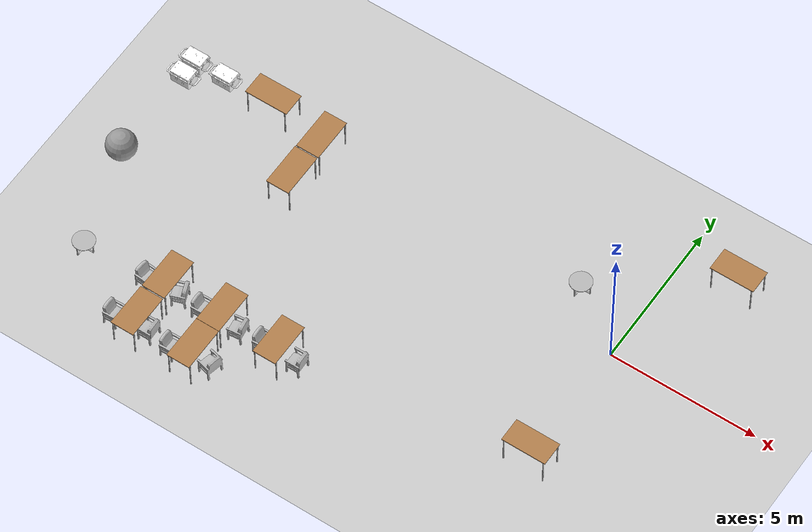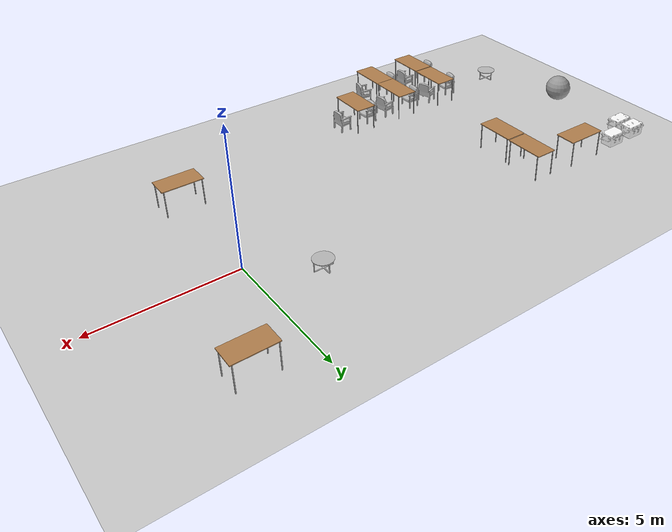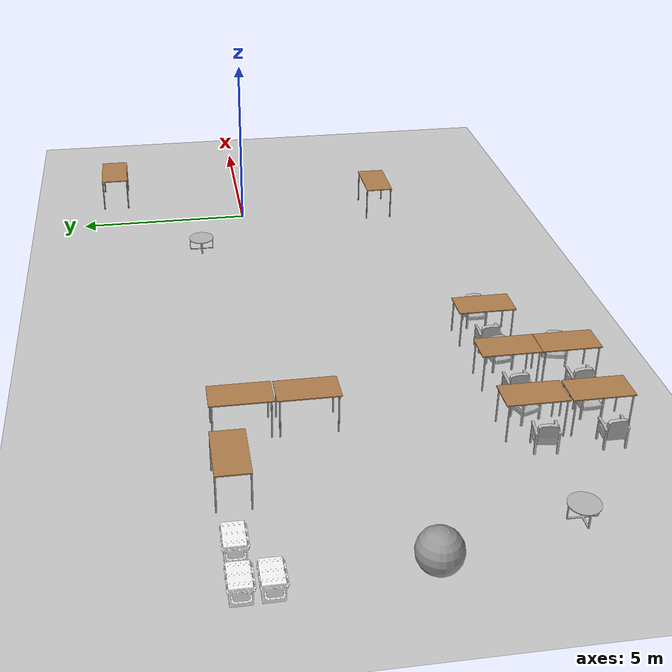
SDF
<sdf version="1.7">
 <world name="default">
  <light name="sun" type="directional">
   <pose>0 0 10 0 -0 0</pose>
   <diffuse>0.8 0.8 0.8 1</diffuse>
   <specular>0.2 0.2 0.2 1</specular>
   <attenuation>
    <range>1000</range>
    <constant>0.9</constant>
    <linear>0.01</linear>
    <quadratic>0.001</quadratic>
   </attenuation>
   <direction>-0.5 0.1 -0.9</direction>
   <spot><inner_angle>0</inner_angle><outer_angle>0</outer_angle><falloff>0</falloff></spot>
  </light>
  <model name="ground_plane">
   <static>1</static>
   <link name="link">
    <collision name="collision">
     <geometry><plane><normal>0 0 1</normal><size>100 100</size></plane></geometry>
     <surface>
      <contact><collide_bitmask>65535</collide_bitmask></contact>
      <friction><ode><mu>100</mu><mu2>50</mu2></ode></friction>
     </surface>
    </collision>
    <visual name="visual">
     <cast_shadows>0</cast_shadows>
     <geometry><plane><normal>0 0 1</normal><size>100 100</size></plane></geometry>
     <material>
      <script><uri>file://media/materials/scripts/gazebo.material</uri><name>Gazebo/Grey</name></script>
     </material>
    </visual>
   </link>
  </model>
  <gravity>0 0 -9.8</gravity>
  <magnetic_field>6e-06 2.3e-05 -4.2e-05</magnetic_field>
  <atmosphere type="adiabatic"/>
  <physics type="ode">
   <max_step_size>0.001</max_step_size>
   <real_time_factor>1</real_time_factor>
   <real_time_update_rate>1000</real_time_update_rate>
  </physics>
  <scene><ambient>0.4 0.4 0.4 1</ambient><background>0.7 0.7 0.7 1</background><shadows>1</shadows></scene>
  <audio><device>default</device></audio>
  <spherical_coordinates>
   <surface_model>EARTH_WGS84</surface_model>
   <latitude_deg>0</latitude_deg>
   <longitude_deg>0</longitude_deg>
   <elevation>0</elevation>
   <heading_deg>0</heading_deg>
  </spherical_coordinates>
  <model name="table">
   <static>1</static>
   <link name="link">
    <collision name="surface">
     <pose>0 0 1 0 -0 0</pose>
     <geometry><box><size>1.5 0.8 0.03</size></box></geometry>
     <surface><friction><ode><mu>0.6</mu><mu2>0.6</mu2></ode></friction></surface>
    </collision>
    <visual name="visual1">
     <pose>0 0 1 0 -0 0</pose>
     <geometry><box><size>1.5 0.8 0.03</size></box></geometry>
     <material>
      <script><uri>file://media/materials/scripts/gazebo.material</uri><name>Gazebo/Wood</name></script>
     </material>
    </visual>
    <collision name="front_left_leg">
     <pose>0.68 0.38 0.5 0 -0 0</pose>
     <geometry><cylinder><radius>0.02</radius><length>1</length></cylinder></geometry>
    </collision>
    <visual name="front_left_leg">
     <pose>0.68 0.38 0.5 0 -0 0</pose>
     <geometry><cylinder><radius>0.02</radius><length>1</length></cylinder></geometry>
     <material>
      <script><uri>file://media/materials/scripts/gazebo.material</uri><name>Gazebo/Grey</name></script>
     </material>
    </visual>
    <collision name="front_right_leg">
     <pose>0.68 -0.38 0.5 0 -0 0</pose>
     <geometry><cylinder><radius>0.02</radius><length>1</length></cylinder></geometry>
    </collision>
    <visual name="front_right_leg">
     <pose>0.68 -0.38 0.5 0 -0 0</pose>
     <geometry><cylinder><radius>0.02</radius><length>1</length></cylinder></geometry>
     <material>
      <script><uri>file://media/materials/scripts/gazebo.material</uri><name>Gazebo/Grey</name></script>
     </material>
    </visual>
    <collision name="back_right_leg">
     <pose>-0.68 -0.38 0.5 0 -0 0</pose>
     <geometry><cylinder><radius>0.02</radius><length>1</length></cylinder></geometry>
    </collision>
    <visual name="back_right_leg">
     <pose>-0.68 -0.38 0.5 0 -0 0</pose>
     <geometry><cylinder><radius>0.02</radius><length>1</length></cylinder></geometry>
     <material>
      <script><uri>file://media/materials/scripts/gazebo.material</uri><name>Gazebo/Grey</name></script>
     </material>
    </visual>
    <collision name="back_left_leg">
     <pose>-0.68 0.38 0.5 0 -0 0</pose>
     <geometry><cylinder><radius>0.02</radius><length>1</length></cylinder></geometry>
    </collision>
    <visual name="back_left_leg">
     <pose>-0.68 0.38 0.5 0 -0 0</pose>
     <geometry><cylinder><radius>0.02</radius><length>1</length></cylinder></geometry>
     <material>
      <script><uri>file://media/materials/scripts/gazebo.material</uri><name>Gazebo/Grey</name></script>
     </material>
    </visual>
   </link>
   <pose>1.84498 4.01691 0 0 -0 0</pose>
  </model>
  <model name="table_0">
   <static>1</static>
   <link name="link">
    <collision name="surface">
     <pose>0 0 1 0 -0 0</pose>
     <geometry><box><size>1.5 0.8 0.03</size></box></geometry>
     <surface><friction><ode><mu>0.6</mu><mu2>0.6</mu2></ode></friction></surface>
    </collision>
    <visual name="visual1">
     <pose>0 0 1 0 -0 0</pose>
     <geometry><box><size>1.5 0.8 0.03</size></box></geometry>
     <material>
      <script><uri>file://media/materials/scripts/gazebo.material</uri><name>Gazebo/Wood</name></script>
     </material>
    </visual>
    <collision name="front_left_leg">
     <pose>0.68 0.38 0.5 0 -0 0</pose>
     <geometry><cylinder><radius>0.02</radius><length>1</length></cylinder></geometry>
    </collision>
    <visual name="front_left_leg">
     <pose>0.68 0.38 0.5 0 -0 0</pose>
     <geometry><cylinder><radius>0.02</radius><length>1</length></cylinder></geometry>
     <material>
      <script><uri>file://media/materials/scripts/gazebo.material</uri><name>Gazebo/Grey</name></script>
     </material>
    </visual>
    <collision name="front_right_leg">
     <pose>0.68 -0.38 0.5 0 -0 0</pose>
     <geometry><cylinder><radius>0.02</radius><length>1</length></cylinder></geometry>
    </collision>
    <visual name="front_right_leg">
     <pose>0.68 -0.38 0.5 0 -0 0</pose>
     <geometry><cylinder><radius>0.02</radius><length>1</length></cylinder></geometry>
     <material>
      <script><uri>file://media/materials/scripts/gazebo.material</uri><name>Gazebo/Grey</name></script>
     </material>
    </visual>
    <collision name="back_right_leg">
     <pose>-0.68 -0.38 0.5 0 -0 0</pose>
     <geometry><cylinder><radius>0.02</radius><length>1</length></cylinder></geometry>
    </collision>
    <visual name="back_right_leg">
     <pose>-0.68 -0.38 0.5 0 -0 0</pose>
     <geometry><cylinder><radius>0.02</radius><length>1</length></cylinder></geometry>
     <material>
      <script><uri>file://media/materials/scripts/gazebo.material</uri><name>Gazebo/Grey</name></script>
     </material>
    </visual>
    <collision name="back_left_leg">
     <pose>-0.68 0.38 0.5 0 -0 0</pose>
     <geometry><cylinder><radius>0.02</radius><length>1</length></cylinder></geometry>
    </collision>
    <visual name="back_left_leg">
     <pose>-0.68 0.38 0.5 0 -0 0</pose>
     <geometry><cylinder><radius>0.02</radius><length>1</length></cylinder></geometry>
     <material>
      <script><uri>file://media/materials/scripts/gazebo.material</uri><name>Gazebo/Grey</name></script>
     </material>
    </visual>
   </link>
   <pose>0 -4.29647 0 0 -0 0</pose>
  </model>
  <model name="CoffeeTable">
   <link name="body">
    <visual name="visual">
     <geometry>
      <mesh><uri>model://coffeetable/meshes/CoffeeTable.obj</uri><scale>0.00817 0.00817 0.00817</scale></mesh>
     </geometry>
    </visual>
    <collision name="collision">
     <geometry>
      <mesh><uri>model://coffeetable/meshes/CoffeeTable.obj</uri><scale>0.00817 0.00817 0.00817</scale></mesh>
     </geometry>
    </collision>
    <inertial>
     <inertia><ixx>1</ixx><ixy>0</ixy><ixz>0</ixz><iyy>1</iyy><iyz>0</iyz><izz>1</izz></inertia>
     <mass>1</mass>
    </inertial>
   </link>
   <pose>-2 1.45574 -0.000121 0 3e-06 0</pose>
  </model>
  <model name="CoffeeTable_0">
   <link name="body">
    <visual name="visual">
     <geometry>
      <mesh><uri>model://coffeetable/meshes/CoffeeTable.obj</uri><scale>0.00817 0.00817 0.00817</scale></mesh>
     </geometry>
    </visual>
    <collision name="collision">
     <geometry>
      <mesh><uri>model://coffeetable/meshes/CoffeeTable.obj</uri><scale>0.00817 0.00817 0.00817</scale></mesh>
     </geometry>
    </collision>
    <inertial>
     <inertia><ixx>1</ixx><ixy>0</ixy><ixz>0</ixz><iyy>1</iyy><iyz>0</iyz><izz>1</izz></inertia>
     <mass>1</mass>
    </inertial>
   </link>
   <pose>-15 -5.56573 -0.00012 3e-06 -2e-06 0</pose>
  </model>
  <model name="table_1_clone_0">
   <static>1</static>
   <link name="link">
    <collision name="surface">
     <pose>0 0 1 0 -0 0</pose>
     <geometry><box><size>1.5 0.8 0.03</size></box></geometry>
     <surface><friction><ode><mu>0.6</mu><mu2>0.6</mu2></ode></friction></surface>
    </collision>
    <visual name="visual1">
     <pose>0 0 1 0 -0 0</pose>
     <geometry><box><size>1.5 0.8 0.03</size></box></geometry>
     <material>
      <script><uri>file://media/materials/scripts/gazebo.material</uri><name>Gazebo/Wood</name></script>
     </material>
    </visual>
    <collision name="front_left_leg">
     <pose>0.68 0.38 0.5 0 -0 0</pose>
     <geometry><cylinder><radius>0.02</radius><length>1</length></cylinder></geometry>
    </collision>
    <visual name="front_left_leg">
     <pose>0.68 0.38 0.5 0 -0 0</pose>
     <geometry><cylinder><radius>0.02</radius><length>1</length></cylinder></geometry>
     <material>
      <script><uri>file://media/materials/scripts/gazebo.material</uri><name>Gazebo/Grey</name></script>
     </material>
    </visual>
    <collision name="front_right_leg">
     <pose>0.68 -0.38 0.5 0 -0 0</pose>
     <geometry><cylinder><radius>0.02</radius><length>1</length></cylinder></geometry>
    </collision>
    <visual name="front_right_leg">
     <pose>0.68 -0.38 0.5 0 -0 0</pose>
     <geometry><cylinder><radius>0.02</radius><length>1</length></cylinder></geometry>
     <material>
      <script><uri>file://media/materials/scripts/gazebo.material</uri><name>Gazebo/Grey</name></script>
     </material>
    </visual>
    <collision name="back_right_leg">
     <pose>-0.68 -0.38 0.5 0 -0 0</pose>
     <geometry><cylinder><radius>0.02</radius><length>1</length></cylinder></geometry>
    </collision>
    <visual name="back_right_leg">
     <pose>-0.68 -0.38 0.5 0 -0 0</pose>
     <geometry><cylinder><radius>0.02</radius><length>1</length></cylinder></geometry>
     <material>
      <script><uri>file://media/materials/scripts/gazebo.material</uri><name>Gazebo/Grey</name></script>
     </material>
    </visual>
    <collision name="back_left_leg">
     <pose>-0.68 0.38 0.5 0 -0 0</pose>
     <geometry><cylinder><radius>0.02</radius><length>1</length></cylinder></geometry>
    </collision>
    <visual name="back_left_leg">
     <pose>-0.68 0.38 0.5 0 -0 0</pose>
     <geometry><cylinder><radius>0.02</radius><length>1</length></cylinder></geometry>
     <material>
      <script><uri>file://media/materials/scripts/gazebo.material</uri><name>Gazebo/Grey</name></script>
     </material>
    </visual>
   </link>
   <pose>-8 -5.49442 0 0 0 -1.5708</pose>
  </model>
  <model name="table_1_clone_1">
   <static>1</static>
   <link name="link">
    <collision name="surface">
     <pose>0 0 1 0 -0 0</pose>
     <geometry><box><size>1.5 0.8 0.03</size></box></geometry>
     <surface><friction><ode><mu>0.6</mu><mu2>0.6</mu2></ode></friction></surface>
    </collision>
    <visual name="visual1">
     <pose>0 0 1 0 -0 0</pose>
     <geometry><box><size>1.5 0.8 0.03</size></box></geometry>
     <material>
      <script><uri>file://media/materials/scripts/gazebo.material</uri><name>Gazebo/Wood</name></script>
     </material>
    </visual>
    <collision name="front_left_leg">
     <pose>0.68 0.38 0.5 0 -0 0</pose>
     <geometry><cylinder><radius>0.02</radius><length>1</length></cylinder></geometry>
    </collision>
    <visual name="front_left_leg">
     <pose>0.68 0.38 0.5 0 -0 0</pose>
     <geometry><cylinder><radius>0.02</radius><length>1</length></cylinder></geometry>
     <material>
      <script><uri>file://media/materials/scripts/gazebo.material</uri><name>Gazebo/Grey</name></script>
     </material>
    </visual>
    <collision name="front_right_leg">
     <pose>0.68 -0.38 0.5 0 -0 0</pose>
     <geometry><cylinder><radius>0.02</radius><length>1</length></cylinder></geometry>
    </collision>
    <visual name="front_right_leg">
     <pose>0.68 -0.38 0.5 0 -0 0</pose>
     <geometry><cylinder><radius>0.02</radius><length>1</length></cylinder></geometry>
     <material>
      <script><uri>file://media/materials/scripts/gazebo.material</uri><name>Gazebo/Grey</name></script>
     </material>
    </visual>
    <collision name="back_right_leg">
     <pose>-0.68 -0.38 0.5 0 -0 0</pose>
     <geometry><cylinder><radius>0.02</radius><length>1</length></cylinder></geometry>
    </collision>
    <visual name="back_right_leg">
     <pose>-0.68 -0.38 0.5 0 -0 0</pose>
     <geometry><cylinder><radius>0.02</radius><length>1</length></cylinder></geometry>
     <material>
      <script><uri>file://media/materials/scripts/gazebo.material</uri><name>Gazebo/Grey</name></script>
     </material>
    </visual>
    <collision name="back_left_leg">
     <pose>-0.68 0.38 0.5 0 -0 0</pose>
     <geometry><cylinder><radius>0.02</radius><length>1</length></cylinder></geometry>
    </collision>
    <visual name="back_left_leg">
     <pose>-0.68 0.38 0.5 0 -0 0</pose>
     <geometry><cylinder><radius>0.02</radius><length>1</length></cylinder></geometry>
     <material>
      <script><uri>file://media/materials/scripts/gazebo.material</uri><name>Gazebo/Grey</name></script>
     </material>
    </visual>
   </link>
   <pose>-10 -7 0 0 0 -1.5708</pose>
  </model>
  <model name="table_1_clone_2">
   <static>1</static>
   <link name="link">
    <collision name="surface">
     <pose>0 0 1 0 -0 0</pose>
     <geometry><box><size>1.5 0.8 0.03</size></box></geometry>
     <surface><friction><ode><mu>0.6</mu><mu2>0.6</mu2></ode></friction></surface>
    </collision>
    <visual name="visual1">
     <pose>0 0 1 0 -0 0</pose>
     <geometry><box><size>1.5 0.8 0.03</size></box></geometry>
     <material>
      <script><uri>file://media/materials/scripts/gazebo.material</uri><name>Gazebo/Wood</name></script>
     </material>
    </visual>
    <collision name="front_left_leg">
     <pose>0.68 0.38 0.5 0 -0 0</pose>
     <geometry><cylinder><radius>0.02</radius><length>1</length></cylinder></geometry>
    </collision>
    <visual name="front_left_leg">
     <pose>0.68 0.38 0.5 0 -0 0</pose>
     <geometry><cylinder><radius>0.02</radius><length>1</length></cylinder></geometry>
     <material>
      <script><uri>file://media/materials/scripts/gazebo.material</uri><name>Gazebo/Grey</name></script>
     </material>
    </visual>
    <collision name="front_right_leg">
     <pose>0.68 -0.38 0.5 0 -0 0</pose>
     <geometry><cylinder><radius>0.02</radius><length>1</length></cylinder></geometry>
    </collision>
    <visual name="front_right_leg">
     <pose>0.68 -0.38 0.5 0 -0 0</pose>
     <geometry><cylinder><radius>0.02</radius><length>1</length></cylinder></geometry>
     <material>
      <script><uri>file://media/materials/scripts/gazebo.material</uri><name>Gazebo/Grey</name></script>
     </material>
    </visual>
    <collision name="back_right_leg">
     <pose>-0.68 -0.38 0.5 0 -0 0</pose>
     <geometry><cylinder><radius>0.02</radius><length>1</length></cylinder></geometry>
    </collision>
    <visual name="back_right_leg">
     <pose>-0.68 -0.38 0.5 0 -0 0</pose>
     <geometry><cylinder><radius>0.02</radius><length>1</length></cylinder></geometry>
     <material>
      <script><uri>file://media/materials/scripts/gazebo.material</uri><name>Gazebo/Grey</name></script>
     </material>
    </visual>
    <collision name="back_left_leg">
     <pose>-0.68 0.38 0.5 0 -0 0</pose>
     <geometry><cylinder><radius>0.02</radius><length>1</length></cylinder></geometry>
    </collision>
    <visual name="back_left_leg">
     <pose>-0.68 0.38 0.5 0 -0 0</pose>
     <geometry><cylinder><radius>0.02</radius><length>1</length></cylinder></geometry>
     <material>
      <script><uri>file://media/materials/scripts/gazebo.material</uri><name>Gazebo/Grey</name></script>
     </material>
    </visual>
   </link>
   <pose>-10 -5.49442 0 0 0 -1.5708</pose>
  </model>
  <model name="table_1_clone_3">
   <static>1</static>
   <link name="link">
    <collision name="surface">
     <pose>0 0 1 0 -0 0</pose>
     <geometry><box><size>1.5 0.8 0.03</size></box></geometry>
     <surface><friction><ode><mu>0.6</mu><mu2>0.6</mu2></ode></friction></surface>
    </collision>
    <visual name="visual1">
     <pose>0 0 1 0 -0 0</pose>
     <geometry><box><size>1.5 0.8 0.03</size></box></geometry>
     <material>
      <script><uri>file://media/materials/scripts/gazebo.material</uri><name>Gazebo/Wood</name></script>
     </material>
    </visual>
    <collision name="front_left_leg">
     <pose>0.68 0.38 0.5 0 -0 0</pose>
     <geometry><cylinder><radius>0.02</radius><length>1</length></cylinder></geometry>
    </collision>
    <visual name="front_left_leg">
     <pose>0.68 0.38 0.5 0 -0 0</pose>
     <geometry><cylinder><radius>0.02</radius><length>1</length></cylinder></geometry>
     <material>
      <script><uri>file://media/materials/scripts/gazebo.material</uri><name>Gazebo/Grey</name></script>
     </material>
    </visual>
    <collision name="front_right_leg">
     <pose>0.68 -0.38 0.5 0 -0 0</pose>
     <geometry><cylinder><radius>0.02</radius><length>1</length></cylinder></geometry>
    </collision>
    <visual name="front_right_leg">
     <pose>0.68 -0.38 0.5 0 -0 0</pose>
     <geometry><cylinder><radius>0.02</radius><length>1</length></cylinder></geometry>
     <material>
      <script><uri>file://media/materials/scripts/gazebo.material</uri><name>Gazebo/Grey</name></script>
     </material>
    </visual>
    <collision name="back_right_leg">
     <pose>-0.68 -0.38 0.5 0 -0 0</pose>
     <geometry><cylinder><radius>0.02</radius><length>1</length></cylinder></geometry>
    </collision>
    <visual name="back_right_leg">
     <pose>-0.68 -0.38 0.5 0 -0 0</pose>
     <geometry><cylinder><radius>0.02</radius><length>1</length></cylinder></geometry>
     <material>
      <script><uri>file://media/materials/scripts/gazebo.material</uri><name>Gazebo/Grey</name></script>
     </material>
    </visual>
    <collision name="back_left_leg">
     <pose>-0.68 0.38 0.5 0 -0 0</pose>
     <geometry><cylinder><radius>0.02</radius><length>1</length></cylinder></geometry>
    </collision>
    <visual name="back_left_leg">
     <pose>-0.68 0.38 0.5 0 -0 0</pose>
     <geometry><cylinder><radius>0.02</radius><length>1</length></cylinder></geometry>
     <material>
      <script><uri>file://media/materials/scripts/gazebo.material</uri><name>Gazebo/Grey</name></script>
     </material>
    </visual>
   </link>
   <pose>-12 -7 0 0 0 -1.5708</pose>
  </model>
  <model name="table_1_clone_5_clone">
   <static>1</static>
   <link name="link">
    <collision name="surface">
     <pose>0 0 1 0 -0 0</pose>
     <geometry><box><size>1.5 0.8 0.03</size></box></geometry>
     <surface><friction><ode><mu>0.6</mu><mu2>0.6</mu2></ode></friction></surface>
    </collision>
    <visual name="visual1">
     <pose>0 0 1 0 -0 0</pose>
     <geometry><box><size>1.5 0.8 0.03</size></box></geometry>
     <material>
      <script><uri>file://media/materials/scripts/gazebo.material</uri><name>Gazebo/Wood</name></script>
     </material>
    </visual>
    <collision name="front_left_leg">
     <pose>0.68 0.38 0.5 0 -0 0</pose>
     <geometry><cylinder><radius>0.02</radius><length>1</length></cylinder></geometry>
    </collision>
    <visual name="front_left_leg">
     <pose>0.68 0.38 0.5 0 -0 0</pose>
     <geometry><cylinder><radius>0.02</radius><length>1</length></cylinder></geometry>
     <material>
      <script><uri>file://media/materials/scripts/gazebo.material</uri><name>Gazebo/Grey</name></script>
     </material>
    </visual>
    <collision name="front_right_leg">
     <pose>0.68 -0.38 0.5 0 -0 0</pose>
     <geometry><cylinder><radius>0.02</radius><length>1</length></cylinder></geometry>
    </collision>
    <visual name="front_right_leg">
     <pose>0.68 -0.38 0.5 0 -0 0</pose>
     <geometry><cylinder><radius>0.02</radius><length>1</length></cylinder></geometry>
     <material>
      <script><uri>file://media/materials/scripts/gazebo.material</uri><name>Gazebo/Grey</name></script>
     </material>
    </visual>
    <collision name="back_right_leg">
     <pose>-0.68 -0.38 0.5 0 -0 0</pose>
     <geometry><cylinder><radius>0.02</radius><length>1</length></cylinder></geometry>
    </collision>
    <visual name="back_right_leg">
     <pose>-0.68 -0.38 0.5 0 -0 0</pose>
     <geometry><cylinder><radius>0.02</radius><length>1</length></cylinder></geometry>
     <material>
      <script><uri>file://media/materials/scripts/gazebo.material</uri><name>Gazebo/Grey</name></script>
     </material>
    </visual>
    <collision name="back_left_leg">
     <pose>-0.68 0.38 0.5 0 -0 0</pose>
     <geometry><cylinder><radius>0.02</radius><length>1</length></cylinder></geometry>
    </collision>
    <visual name="back_left_leg">
     <pose>-0.68 0.38 0.5 0 -0 0</pose>
     <geometry><cylinder><radius>0.02</radius><length>1</length></cylinder></geometry>
     <material>
      <script><uri>file://media/materials/scripts/gazebo.material</uri><name>Gazebo/Grey</name></script>
     </material>
    </visual>
   </link>
   <pose>-13.0967 1.55283 0 0 -0 3.14159</pose>
  </model>
  <model name="table_1_clone_4_clone">
   <static>1</static>
   <link name="link">
    <collision name="surface">
     <pose>0 0 1 0 -0 0</pose>
     <geometry><box><size>1.5 0.8 0.03</size></box></geometry>
     <surface><friction><ode><mu>0.6</mu><mu2>0.6</mu2></ode></friction></surface>
    </collision>
    <visual name="visual1">
     <pose>0 0 1 0 -0 0</pose>
     <geometry><box><size>1.5 0.8 0.03</size></box></geometry>
     <material>
      <script><uri>file://media/materials/scripts/gazebo.material</uri><name>Gazebo/Wood</name></script>
     </material>
    </visual>
    <collision name="front_left_leg">
     <pose>0.68 0.38 0.5 0 -0 0</pose>
     <geometry><cylinder><radius>0.02</radius><length>1</length></cylinder></geometry>
    </collision>
    <visual name="front_left_leg">
     <pose>0.68 0.38 0.5 0 -0 0</pose>
     <geometry><cylinder><radius>0.02</radius><length>1</length></cylinder></geometry>
     <material>
      <script><uri>file://media/materials/scripts/gazebo.material</uri><name>Gazebo/Grey</name></script>
     </material>
    </visual>
    <collision name="front_right_leg">
     <pose>0.68 -0.38 0.5 0 -0 0</pose>
     <geometry><cylinder><radius>0.02</radius><length>1</length></cylinder></geometry>
    </collision>
    <visual name="front_right_leg">
     <pose>0.68 -0.38 0.5 0 -0 0</pose>
     <geometry><cylinder><radius>0.02</radius><length>1</length></cylinder></geometry>
     <material>
      <script><uri>file://media/materials/scripts/gazebo.material</uri><name>Gazebo/Grey</name></script>
     </material>
    </visual>
    <collision name="back_right_leg">
     <pose>-0.68 -0.38 0.5 0 -0 0</pose>
     <geometry><cylinder><radius>0.02</radius><length>1</length></cylinder></geometry>
    </collision>
    <visual name="back_right_leg">
     <pose>-0.68 -0.38 0.5 0 -0 0</pose>
     <geometry><cylinder><radius>0.02</radius><length>1</length></cylinder></geometry>
     <material>
      <script><uri>file://media/materials/scripts/gazebo.material</uri><name>Gazebo/Grey</name></script>
     </material>
    </visual>
    <collision name="back_left_leg">
     <pose>-0.68 0.38 0.5 0 -0 0</pose>
     <geometry><cylinder><radius>0.02</radius><length>1</length></cylinder></geometry>
    </collision>
    <visual name="back_left_leg">
     <pose>-0.68 0.38 0.5 0 -0 0</pose>
     <geometry><cylinder><radius>0.02</radius><length>1</length></cylinder></geometry>
     <material>
      <script><uri>file://media/materials/scripts/gazebo.material</uri><name>Gazebo/Grey</name></script>
     </material>
    </visual>
   </link>
   <pose>-11.0599 1.14871 0 0 0 -1.5708</pose>
  </model>
  <model name="table_1_clone_4_clone_clone">
   <static>1</static>
   <link name="link">
    <collision name="surface">
     <pose>0 0 1 0 -0 0</pose>
     <geometry><box><size>1.5 0.8 0.03</size></box></geometry>
     <surface><friction><ode><mu>0.6</mu><mu2>0.6</mu2></ode></friction></surface>
    </collision>
    <visual name="visual1">
     <pose>0 0 1 0 -0 0</pose>
     <geometry><box><size>1.5 0.8 0.03</size></box></geometry>
     <material>
      <script><uri>file://media/materials/scripts/gazebo.material</uri><name>Gazebo/Wood</name></script>
     </material>
    </visual>
    <collision name="front_left_leg">
     <pose>0.68 0.38 0.5 0 -0 0</pose>
     <geometry><cylinder><radius>0.02</radius><length>1</length></cylinder></geometry>
    </collision>
    <visual name="front_left_leg">
     <pose>0.68 0.38 0.5 0 -0 0</pose>
     <geometry><cylinder><radius>0.02</radius><length>1</length></cylinder></geometry>
     <material>
      <script><uri>file://media/materials/scripts/gazebo.material</uri><name>Gazebo/Grey</name></script>
     </material>
    </visual>
    <collision name="front_right_leg">
     <pose>0.68 -0.38 0.5 0 -0 0</pose>
     <geometry><cylinder><radius>0.02</radius><length>1</length></cylinder></geometry>
    </collision>
    <visual name="front_right_leg">
     <pose>0.68 -0.38 0.5 0 -0 0</pose>
     <geometry><cylinder><radius>0.02</radius><length>1</length></cylinder></geometry>
     <material>
      <script><uri>file://media/materials/scripts/gazebo.material</uri><name>Gazebo/Grey</name></script>
     </material>
    </visual>
    <collision name="back_right_leg">
     <pose>-0.68 -0.38 0.5 0 -0 0</pose>
     <geometry><cylinder><radius>0.02</radius><length>1</length></cylinder></geometry>
    </collision>
    <visual name="back_right_leg">
     <pose>-0.68 -0.38 0.5 0 -0 0</pose>
     <geometry><cylinder><radius>0.02</radius><length>1</length></cylinder></geometry>
     <material>
      <script><uri>file://media/materials/scripts/gazebo.material</uri><name>Gazebo/Grey</name></script>
     </material>
    </visual>
    <collision name="back_left_leg">
     <pose>-0.68 0.38 0.5 0 -0 0</pose>
     <geometry><cylinder><radius>0.02</radius><length>1</length></cylinder></geometry>
    </collision>
    <visual name="back_left_leg">
     <pose>-0.68 0.38 0.5 0 -0 0</pose>
     <geometry><cylinder><radius>0.02</radius><length>1</length></cylinder></geometry>
     <material>
      <script><uri>file://media/materials/scripts/gazebo.material</uri><name>Gazebo/Grey</name></script>
     </material>
    </visual>
   </link>
   <pose>-11.0752 -0.396348 0 0 0 -1.5708</pose>
  </model>
  <model name="unit_sphere">
   <pose>-16.0258 -2.23022 0.5 0 -0 0</pose>
   <link name="link">
    <inertial>
     <mass>1</mass>
     <inertia><ixx>0.1</ixx><ixy>0</ixy><ixz>0</ixz><iyy>0.1</iyy><iyz>0</iyz><izz>0.1</izz></inertia>
    </inertial>
    <collision name="collision"><geometry><sphere><radius>0.5</radius></sphere></geometry></collision>
    <visual name="visual">
     <geometry><sphere><radius>0.5</radius></sphere></geometry>
     <material>
      <script><name>Gazebo/Grey</name><uri>file://media/materials/scripts/gazebo.material</uri></script>
     </material>
    </visual>
   </link>
  </model>
  <model name="Chair_0">
   <link name="body">
    <pose>0 0 0 0 -0 1.5708</pose>
    <visual name="visual">
     <geometry>
      <mesh><uri>model://chair/meshes/Chair.obj</uri><scale>0.00817 0.00817 0.00817</scale></mesh>
     </geometry>
    </visual>
    <collision name="collision">
     <geometry>
      <mesh><uri>model://chair/meshes/Chair.obj</uri><scale>0.00817 0.00817 0.00817</scale></mesh>
     </geometry>
    </collision>
    <inertial>
     <inertia><ixx>1</ixx><ixy>0</ixy><ixz>0</ixz><iyy>1</iyy><iyz>0</iyz><izz>1</izz></inertia>
     <mass>1</mass>
    </inertial>
   </link>
   <pose>-8.5117 -5.48522 -1e-05 -1e-06 -2e-06 0</pose>
  </model>
  <model name="Chair_0_clone_0">
   <link name="body">
    <pose>0 0 0 0 -0 1.5708</pose>
    <visual name="visual">
     <geometry>
      <mesh><uri>model://chair/meshes/Chair.obj</uri><scale>0.00817 0.00817 0.00817</scale></mesh>
     </geometry>
    </visual>
    <collision name="collision">
     <geometry>
      <mesh><uri>model://chair/meshes/Chair.obj</uri><scale>0.00817 0.00817 0.00817</scale></mesh>
     </geometry>
    </collision>
    <inertial>
     <inertia><ixx>1</ixx><ixy>0</ixy><ixz>0</ixz><iyy>1</iyy><iyz>0</iyz><izz>1</izz></inertia>
     <mass>1</mass>
    </inertial>
   </link>
   <pose>-10.6773 -5.52268 -1e-06 -2.3e-05 1.2e-05 0</pose>
  </model>
  <model name="Chair_0_clone_1">
   <link name="body">
    <pose>0 0 0 0 -0 1.5708</pose>
    <visual name="visual">
     <geometry>
      <mesh><uri>model://chair/meshes/Chair.obj</uri><scale>0.00817 0.00817 0.00817</scale></mesh>
     </geometry>
    </visual>
    <collision name="collision">
     <geometry>
      <mesh><uri>model://chair/meshes/Chair.obj</uri><scale>0.00817 0.00817 0.00817</scale></mesh>
     </geometry>
    </collision>
    <inertial>
     <inertia><ixx>1</ixx><ixy>0</ixy><ixz>0</ixz><iyy>1</iyy><iyz>0</iyz><izz>1</izz></inertia>
     <mass>1</mass>
    </inertial>
   </link>
   <pose>-10.6815 -7.1114 2e-06 1e-06 1.4e-05 0</pose>
  </model>
  <model name="Chair_0_clone_2">
   <link name="body">
    <pose>0 0 0 0 -0 1.5708</pose>
    <visual name="visual">
     <geometry>
      <mesh><uri>model://chair/meshes/Chair.obj</uri><scale>0.00817 0.00817 0.00817</scale></mesh>
     </geometry>
    </visual>
    <collision name="collision">
     <geometry>
      <mesh><uri>model://chair/meshes/Chair.obj</uri><scale>0.00817 0.00817 0.00817</scale></mesh>
     </geometry>
    </collision>
    <inertial>
     <inertia><ixx>1</ixx><ixy>0</ixy><ixz>0</ixz><iyy>1</iyy><iyz>0</iyz><izz>1</izz></inertia>
     <mass>1</mass>
    </inertial>
   </link>
   <pose>-12.6668 -5.55131 -3e-06 -2e-05 8e-06 -0.11722</pose>
  </model>
  <model name="Chair_0_clone_3">
   <link name="body">
    <pose>0 0 0 0 -0 1.5708</pose>
    <visual name="visual">
     <geometry>
      <mesh><uri>model://chair/meshes/Chair.obj</uri><scale>0.00817 0.00817 0.00817</scale></mesh>
     </geometry>
    </visual>
    <collision name="collision">
     <geometry>
      <mesh><uri>model://chair/meshes/Chair.obj</uri><scale>0.00817 0.00817 0.00817</scale></mesh>
     </geometry>
    </collision>
    <inertial>
     <inertia><ixx>1</ixx><ixy>0</ixy><ixz>0</ixz><iyy>1</iyy><iyz>0</iyz><izz>1</izz></inertia>
     <mass>1</mass>
    </inertial>
   </link>
   <pose>-12.7155 -7.11345 -0 1e-05 -7e-06 0</pose>
  </model>
  <model name="Chair_0_clone_4">
   <link name="body">
    <pose>0 0 0 0 -0 1.5708</pose>
    <visual name="visual">
     <geometry>
      <mesh><uri>model://chair/meshes/Chair.obj</uri><scale>0.00817 0.00817 0.00817</scale></mesh>
     </geometry>
    </visual>
    <collision name="collision">
     <geometry>
      <mesh><uri>model://chair/meshes/Chair.obj</uri><scale>0.00817 0.00817 0.00817</scale></mesh>
     </geometry>
    </collision>
    <inertial>
     <inertia><ixx>1</ixx><ixy>0</ixy><ixz>0</ixz><iyy>1</iyy><iyz>0</iyz><izz>1</izz></inertia>
     <mass>1</mass>
    </inertial>
   </link>
   <pose>-7.3992 -5.49972 -7e-06 -4e-06 -8e-06 -3.11759</pose>
  </model>
  <model name="Chair_0_clone_4_clone_0">
   <link name="body">
    <pose>0 0 0 0 -0 1.5708</pose>
    <visual name="visual">
     <geometry>
      <mesh><uri>model://chair/meshes/Chair.obj</uri><scale>0.00817 0.00817 0.00817</scale></mesh>
     </geometry>
    </visual>
    <collision name="collision">
     <geometry>
      <mesh><uri>model://chair/meshes/Chair.obj</uri><scale>0.00817 0.00817 0.00817</scale></mesh>
     </geometry>
    </collision>
    <inertial>
     <inertia><ixx>1</ixx><ixy>0</ixy><ixz>0</ixz><iyy>1</iyy><iyz>0</iyz><izz>1</izz></inertia>
     <mass>1</mass>
    </inertial>
   </link>
   <pose>-9.4618 -6.9689 -1e-06 2e-06 1e-06 2.92284</pose>
  </model>
  <model name="Chair_0_clone_4_clone_1">
   <link name="body">
    <pose>0 0 0 0 -0 1.5708</pose>
    <visual name="visual">
     <geometry>
      <mesh><uri>model://chair/meshes/Chair.obj</uri><scale>0.00817 0.00817 0.00817</scale></mesh>
     </geometry>
    </visual>
    <collision name="collision">
     <geometry>
      <mesh><uri>model://chair/meshes/Chair.obj</uri><scale>0.00817 0.00817 0.00817</scale></mesh>
     </geometry>
    </collision>
    <inertial>
     <inertia><ixx>1</ixx><ixy>0</ixy><ixz>0</ixz><iyy>1</iyy><iyz>0</iyz><izz>1</izz></inertia>
     <mass>1</mass>
    </inertial>
   </link>
   <pose>-9.48188 -5.53846 -5e-06 9e-06 1e-05 -2.99674</pose>
  </model>
  <model name="Chair_0_clone_4_clone_2">
   <link name="body">
    <pose>0 0 0 0 -0 1.5708</pose>
    <visual name="visual">
     <geometry>
      <mesh><uri>model://chair/meshes/Chair.obj</uri><scale>0.00817 0.00817 0.00817</scale></mesh>
     </geometry>
    </visual>
    <collision name="collision">
     <geometry>
      <mesh><uri>model://chair/meshes/Chair.obj</uri><scale>0.00817 0.00817 0.00817</scale></mesh>
     </geometry>
    </collision>
    <inertial>
     <inertia><ixx>1</ixx><ixy>0</ixy><ixz>0</ixz><iyy>1</iyy><iyz>0</iyz><izz>1</izz></inertia>
     <mass>1</mass>
    </inertial>
   </link>
   <pose>-11.6037 -5.4984 1e-06 -0 -3e-06 -2.7691</pose>
  </model>
  <model name="Chair_0_clone_4_clone_3">
   <link name="body">
    <pose>0 0 0 0 -0 1.5708</pose>
    <visual name="visual">
     <geometry>
      <mesh><uri>model://chair/meshes/Chair.obj</uri><scale>0.00817 0.00817 0.00817</scale></mesh>
     </geometry>
    </visual>
    <collision name="collision">
     <geometry>
      <mesh><uri>model://chair/meshes/Chair.obj</uri><scale>0.00817 0.00817 0.00817</scale></mesh>
     </geometry>
    </collision>
    <inertial>
     <inertia><ixx>1</ixx><ixy>0</ixy><ixz>0</ixz><iyy>1</iyy><iyz>0</iyz><izz>1</izz></inertia>
     <mass>1</mass>
    </inertial>
   </link>
   <pose>-11.6476 -7.00833 3e-06 0 -1.2e-05 -3.10372</pose>
  </model>
  <model name="large_crate_0">
   <static>0</static>
   <link name="link">
    <inertial>
     <pose>0 0 0.25 0 -0 0</pose>
     <mass>8</mass>
     <inertia><ixx>0.36486</ixx><ixy>0</ixy><ixz>0</ixz><iyy>0.93845</iyy><iyz>0</iyz><izz>0.983511</izz></inertia>
    </inertial>
    <visual name="visual">
     <geometry><mesh><uri>model://large crate/meshes/LargeCrate.dae</uri></mesh></geometry>
     <material>
      <diffuse>1 1 1 1</diffuse>
      <specular>1 1 1 1</specular>
      <pbr>
       <metal>
        <albedo_map>materials/textures/Crate_Albedo.jpg</albedo_map>
        <normal_map>materials/textures/Crate_Normal.jpg</normal_map>
        <roughness_map>materials/textures/Crate_Roughness.jpg</roughness_map>
       </metal>
      </pbr>
     </material>
    </visual>
    <collision name="Box007">
     <pose>0 0 0.245134 0 -0 0</pose>
     <geometry><box><size>0.719255 0.483863 0.490267</size></box></geometry>
    </collision>
    <collision name="Box008">
     <pose>0 0 0.389035 0 -0 0</pose>
     <geometry><box><size>0.757419 0.526001 0.049913</size></box></geometry>
    </collision>
    <collision name="Box009">
     <pose>0.246876 0.255699 0.378817 1.5708 -0 3.14159</pose>
     <geometry><box><size>0.056022 0.105551 0.031247</size></box></geometry>
    </collision>
    <collision name="Box010">
     <pose>-0.246876 0.255699 0.378817 1.5708 -0 3.14159</pose>
     <geometry><box><size>0.056022 0.105551 0.031247</size></box></geometry>
    </collision>
    <collision name="Box011">
     <pose>0 0.255699 0.378817 1.5708 -0 3.14159</pose>
     <geometry><box><size>0.056022 0.105551 0.031247</size></box></geometry>
    </collision>
    <collision name="Box012">
     <pose>-0.372553 0.13 0.378817 1.5708 0 -1.5708</pose>
     <geometry><box><size>0.056022 0.105551 0.031247</size></box></geometry>
    </collision>
    <collision name="Box013">
     <pose>-0.372553 -0.13 0.378817 1.5708 0 -1.5708</pose>
     <geometry><box><size>0.056022 0.105551 0.031247</size></box></geometry>
    </collision>
    <collision name="Box014">
     <pose>0.372553 -0.13 0.378817 1.5708 -0 1.5708</pose>
     <geometry><box><size>0.056022 0.105551 0.031247</size></box></geometry>
    </collision>
    <collision name="Box015">
     <pose>0.372553 0.13 0.378817 1.5708 -0 1.5708</pose>
     <geometry><box><size>0.056022 0.105551 0.031247</size></box></geometry>
    </collision>
    <collision name="Box016">
     <pose>0.246876 -0.255699 0.378817 1.5708 -0 0</pose>
     <geometry><box><size>0.056022 0.105551 0.031247</size></box></geometry>
    </collision>
    <collision name="Box017">
     <pose>-0.246876 -0.255699 0.378817 1.5708 -0 0</pose>
     <geometry><box><size>0.056022 0.105551 0.031247</size></box></geometry>
    </collision>
    <collision name="Box018">
     <pose>0 -0.255699 0.378817 1.5708 -0 0</pose>
     <geometry><box><size>0.056022 0.105551 0.031247</size></box></geometry>
    </collision>
    <collision name="Box019">
     <pose>0 -0.264152 0.384558 1.5708 -0 3.14159</pose>
     <geometry><box><size>0.662 0.028538 0.040694</size></box></geometry>
    </collision>
    <collision name="Box020">
     <pose>-0.357901 0.179912 0.320486 1.5708 0 -1.5708</pose>
     <geometry><box><size>0.039897 0.096987 0.044738</size></box></geometry>
    </collision>
    <collision name="Box021">
     <pose>-0.357901 -0.179912 0.320486 1.5708 0 -1.5708</pose>
     <geometry><box><size>0.039897 0.096987 0.044738</size></box></geometry>
    </collision>
    <collision name="Box022">
     <pose>-0.520994 0 0.286826 1.5708 0 -1.5708</pose>
     <geometry><box><size>0.266316 0.031634 0.043315</size></box></geometry>
    </collision>
    <collision name="Box023">
     <pose>-0.501567 0.151505 0.286826 1.5708 -0 -2.26893</pose>
     <geometry><box><size>0.08102 0.031634 0.039417</size></box></geometry>
    </collision>
    <collision name="Box024">
     <pose>-0.430842 0.179853 0.286826 1.5708 -0 3.14159</pose>
     <geometry><box><size>0.120291 0.031634 0.03013</size></box></geometry>
    </collision>
    <collision name="Box025">
     <pose>-0.430842 -0.179853 0.286826 1.5708 -0 -1e-06</pose>
     <geometry><box><size>0.120291 0.031634 0.03013</size></box></geometry>
    </collision>
    <collision name="Box026">
     <pose>-0.501567 -0.151505 0.286826 1.5708 0 -0.872665</pose>
     <geometry><box><size>0.08102 0.031634 0.039417</size></box></geometry>
    </collision>
    <collision name="Box027">
     <pose>0.520994 0 0.286826 1.5708 -0 1.5708</pose>
     <geometry><box><size>0.266316 0.031634 0.043315</size></box></geometry>
    </collision>
    <collision name="Box028">
     <pose>0.501568 0.151505 0.286826 1.5708 -0 2.26893</pose>
     <geometry><box><size>0.08102 0.031634 0.039417</size></box></geometry>
    </collision>
    <collision name="Box029">
     <pose>0.501568 -0.151505 0.286826 1.5708 -0 0.872665</pose>
     <geometry><box><size>0.08102 0.031634 0.039417</size></box></geometry>
    </collision>
    <collision name="Box030">
     <pose>0.430842 -0.179853 0.286826 1.5708 -0 -1e-06</pose>
     <geometry><box><size>0.120291 0.031634 0.03013</size></box></geometry>
    </collision>
    <collision name="Box031">
     <pose>0.430842 0.179853 0.286826 1.5708 -0 3.14159</pose>
     <geometry><box><size>0.120291 0.031634 0.03013</size></box></geometry>
    </collision>
   </link>
   <pose>-16.0661 1.65943 -1e-06 0 -0 0</pose>
  </model>
  <model name="large_crate_0_clone">
   <static>0</static>
   <link name="link">
    <inertial>
     <pose>0 0 0.25 0 -0 0</pose>
     <mass>8</mass>
     <inertia><ixx>0.36486</ixx><ixy>0</ixy><ixz>0</ixz><iyy>0.93845</iyy><iyz>0</iyz><izz>0.983511</izz></inertia>
    </inertial>
    <visual name="visual">
     <geometry><mesh><uri>model://large crate/meshes/LargeCrate.dae</uri></mesh></geometry>
     <material>
      <diffuse>1 1 1 1</diffuse>
      <specular>1 1 1 1</specular>
      <pbr>
       <metal>
        <albedo_map>materials/textures/Crate_Albedo.jpg</albedo_map>
        <normal_map>materials/textures/Crate_Normal.jpg</normal_map>
        <roughness_map>materials/textures/Crate_Roughness.jpg</roughness_map>
       </metal>
      </pbr>
     </material>
    </visual>
    <collision name="Box007">
     <pose>0 0 0.245134 0 -0 0</pose>
     <geometry><box><size>0.719255 0.483863 0.490267</size></box></geometry>
    </collision>
    <collision name="Box008">
     <pose>0 0 0.389035 0 -0 0</pose>
     <geometry><box><size>0.757419 0.526001 0.049913</size></box></geometry>
    </collision>
    <collision name="Box009">
     <pose>0.246876 0.255699 0.378817 1.5708 -0 3.14159</pose>
     <geometry><box><size>0.056022 0.105551 0.031247</size></box></geometry>
    </collision>
    <collision name="Box010">
     <pose>-0.246876 0.255699 0.378817 1.5708 -0 3.14159</pose>
     <geometry><box><size>0.056022 0.105551 0.031247</size></box></geometry>
    </collision>
    <collision name="Box011">
     <pose>0 0.255699 0.378817 1.5708 -0 3.14159</pose>
     <geometry><box><size>0.056022 0.105551 0.031247</size></box></geometry>
    </collision>
    <collision name="Box012">
     <pose>-0.372553 0.13 0.378817 1.5708 0 -1.5708</pose>
     <geometry><box><size>0.056022 0.105551 0.031247</size></box></geometry>
    </collision>
    <collision name="Box013">
     <pose>-0.372553 -0.13 0.378817 1.5708 0 -1.5708</pose>
     <geometry><box><size>0.056022 0.105551 0.031247</size></box></geometry>
    </collision>
    <collision name="Box014">
     <pose>0.372553 -0.13 0.378817 1.5708 -0 1.5708</pose>
     <geometry><box><size>0.056022 0.105551 0.031247</size></box></geometry>
    </collision>
    <collision name="Box015">
     <pose>0.372553 0.13 0.378817 1.5708 -0 1.5708</pose>
     <geometry><box><size>0.056022 0.105551 0.031247</size></box></geometry>
    </collision>
    <collision name="Box016">
     <pose>0.246876 -0.255699 0.378817 1.5708 -0 0</pose>
     <geometry><box><size>0.056022 0.105551 0.031247</size></box></geometry>
    </collision>
    <collision name="Box017">
     <pose>-0.246876 -0.255699 0.378817 1.5708 -0 0</pose>
     <geometry><box><size>0.056022 0.105551 0.031247</size></box></geometry>
    </collision>
    <collision name="Box018">
     <pose>0 -0.255699 0.378817 1.5708 -0 0</pose>
     <geometry><box><size>0.056022 0.105551 0.031247</size></box></geometry>
    </collision>
    <collision name="Box019">
     <pose>0 -0.264152 0.384558 1.5708 -0 3.14159</pose>
     <geometry><box><size>0.662 0.028538 0.040694</size></box></geometry>
    </collision>
    <collision name="Box020">
     <pose>-0.357901 0.179912 0.320486 1.5708 0 -1.5708</pose>
     <geometry><box><size>0.039897 0.096987 0.044738</size></box></geometry>
    </collision>
    <collision name="Box021">
     <pose>-0.357901 -0.179912 0.320486 1.5708 0 -1.5708</pose>
     <geometry><box><size>0.039897 0.096987 0.044738</size></box></geometry>
    </collision>
    <collision name="Box022">
     <pose>-0.520994 0 0.286826 1.5708 0 -1.5708</pose>
     <geometry><box><size>0.266316 0.031634 0.043315</size></box></geometry>
    </collision>
    <collision name="Box023">
     <pose>-0.501567 0.151505 0.286826 1.5708 -0 -2.26893</pose>
     <geometry><box><size>0.08102 0.031634 0.039417</size></box></geometry>
    </collision>
    <collision name="Box024">
     <pose>-0.430842 0.179853 0.286826 1.5708 -0 3.14159</pose>
     <geometry><box><size>0.120291 0.031634 0.03013</size></box></geometry>
    </collision>
    <collision name="Box025">
     <pose>-0.430842 -0.179853 0.286826 1.5708 -0 -1e-06</pose>
     <geometry><box><size>0.120291 0.031634 0.03013</size></box></geometry>
    </collision>
    <collision name="Box026">
     <pose>-0.501567 -0.151505 0.286826 1.5708 0 -0.872665</pose>
     <geometry><box><size>0.08102 0.031634 0.039417</size></box></geometry>
    </collision>
    <collision name="Box027">
     <pose>0.520994 0 0.286826 1.5708 -0 1.5708</pose>
     <geometry><box><size>0.266316 0.031634 0.043315</size></box></geometry>
    </collision>
    <collision name="Box028">
     <pose>0.501568 0.151505 0.286826 1.5708 -0 2.26893</pose>
     <geometry><box><size>0.08102 0.031634 0.039417</size></box></geometry>
    </collision>
    <collision name="Box029">
     <pose>0.501568 -0.151505 0.286826 1.5708 -0 0.872665</pose>
     <geometry><box><size>0.08102 0.031634 0.039417</size></box></geometry>
    </collision>
    <collision name="Box030">
     <pose>0.430842 -0.179853 0.286826 1.5708 -0 -1e-06</pose>
     <geometry><box><size>0.120291 0.031634 0.03013</size></box></geometry>
    </collision>
    <collision name="Box031">
     <pose>0.430842 0.179853 0.286826 1.5708 -0 3.14159</pose>
     <geometry><box><size>0.120291 0.031634 0.03013</size></box></geometry>
    </collision>
   </link>
   <pose>-16.0571 1.03439 -1e-06 0 -0 0</pose>
  </model>
  <model name="large_crate_0_clone_0">
   <static>0</static>
   <link name="link">
    <inertial>
     <pose>0 0 0.25 0 -0 0</pose>
     <mass>8</mass>
     <inertia><ixx>0.36486</ixx><ixy>0</ixy><ixz>0</ixz><iyy>0.93845</iyy><iyz>0</iyz><izz>0.983511</izz></inertia>
    </inertial>
    <visual name="visual">
     <geometry><mesh><uri>model://large crate/meshes/LargeCrate.dae</uri></mesh></geometry>
     <material>
      <diffuse>1 1 1 1</diffuse>
      <specular>1 1 1 1</specular>
      <pbr>
       <metal>
        <albedo_map>materials/textures/Crate_Albedo.jpg</albedo_map>
        <normal_map>materials/textures/Crate_Normal.jpg</normal_map>
        <roughness_map>materials/textures/Crate_Roughness.jpg</roughness_map>
       </metal>
      </pbr>
     </material>
    </visual>
    <collision name="Box007">
     <pose>0 0 0.245134 0 -0 0</pose>
     <geometry><box><size>0.719255 0.483863 0.490267</size></box></geometry>
    </collision>
    <collision name="Box008">
     <pose>0 0 0.389035 0 -0 0</pose>
     <geometry><box><size>0.757419 0.526001 0.049913</size></box></geometry>
    </collision>
    <collision name="Box009">
     <pose>0.246876 0.255699 0.378817 1.5708 -0 3.14159</pose>
     <geometry><box><size>0.056022 0.105551 0.031247</size></box></geometry>
    </collision>
    <collision name="Box010">
     <pose>-0.246876 0.255699 0.378817 1.5708 -0 3.14159</pose>
     <geometry><box><size>0.056022 0.105551 0.031247</size></box></geometry>
    </collision>
    <collision name="Box011">
     <pose>0 0.255699 0.378817 1.5708 -0 3.14159</pose>
     <geometry><box><size>0.056022 0.105551 0.031247</size></box></geometry>
    </collision>
    <collision name="Box012">
     <pose>-0.372553 0.13 0.378817 1.5708 0 -1.5708</pose>
     <geometry><box><size>0.056022 0.105551 0.031247</size></box></geometry>
    </collision>
    <collision name="Box013">
     <pose>-0.372553 -0.13 0.378817 1.5708 0 -1.5708</pose>
     <geometry><box><size>0.056022 0.105551 0.031247</size></box></geometry>
    </collision>
    <collision name="Box014">
     <pose>0.372553 -0.13 0.378817 1.5708 -0 1.5708</pose>
     <geometry><box><size>0.056022 0.105551 0.031247</size></box></geometry>
    </collision>
    <collision name="Box015">
     <pose>0.372553 0.13 0.378817 1.5708 -0 1.5708</pose>
     <geometry><box><size>0.056022 0.105551 0.031247</size></box></geometry>
    </collision>
    <collision name="Box016">
     <pose>0.246876 -0.255699 0.378817 1.5708 -0 0</pose>
     <geometry><box><size>0.056022 0.105551 0.031247</size></box></geometry>
    </collision>
    <collision name="Box017">
     <pose>-0.246876 -0.255699 0.378817 1.5708 -0 0</pose>
     <geometry><box><size>0.056022 0.105551 0.031247</size></box></geometry>
    </collision>
    <collision name="Box018">
     <pose>0 -0.255699 0.378817 1.5708 -0 0</pose>
     <geometry><box><size>0.056022 0.105551 0.031247</size></box></geometry>
    </collision>
    <collision name="Box019">
     <pose>0 -0.264152 0.384558 1.5708 -0 3.14159</pose>
     <geometry><box><size>0.662 0.028538 0.040694</size></box></geometry>
    </collision>
    <collision name="Box020">
     <pose>-0.357901 0.179912 0.320486 1.5708 0 -1.5708</pose>
     <geometry><box><size>0.039897 0.096987 0.044738</size></box></geometry>
    </collision>
    <collision name="Box021">
     <pose>-0.357901 -0.179912 0.320486 1.5708 0 -1.5708</pose>
     <geometry><box><size>0.039897 0.096987 0.044738</size></box></geometry>
    </collision>
    <collision name="Box022">
     <pose>-0.520994 0 0.286826 1.5708 0 -1.5708</pose>
     <geometry><box><size>0.266316 0.031634 0.043315</size></box></geometry>
    </collision>
    <collision name="Box023">
     <pose>-0.501567 0.151505 0.286826 1.5708 -0 -2.26893</pose>
     <geometry><box><size>0.08102 0.031634 0.039417</size></box></geometry>
    </collision>
    <collision name="Box024">
     <pose>-0.430842 0.179853 0.286826 1.5708 -0 3.14159</pose>
     <geometry><box><size>0.120291 0.031634 0.03013</size></box></geometry>
    </collision>
    <collision name="Box025">
     <pose>-0.430842 -0.179853 0.286826 1.5708 -0 -1e-06</pose>
     <geometry><box><size>0.120291 0.031634 0.03013</size></box></geometry>
    </collision>
    <collision name="Box026">
     <pose>-0.501567 -0.151505 0.286826 1.5708 0 -0.872665</pose>
     <geometry><box><size>0.08102 0.031634 0.039417</size></box></geometry>
    </collision>
    <collision name="Box027">
     <pose>0.520994 0 0.286826 1.5708 -0 1.5708</pose>
     <geometry><box><size>0.266316 0.031634 0.043315</size></box></geometry>
    </collision>
    <collision name="Box028">
     <pose>0.501568 0.151505 0.286826 1.5708 -0 2.26893</pose>
     <geometry><box><size>0.08102 0.031634 0.039417</size></box></geometry>
    </collision>
    <collision name="Box029">
     <pose>0.501568 -0.151505 0.286826 1.5708 -0 0.872665</pose>
     <geometry><box><size>0.08102 0.031634 0.039417</size></box></geometry>
    </collision>
    <collision name="Box030">
     <pose>0.430842 -0.179853 0.286826 1.5708 -0 -1e-06</pose>
     <geometry><box><size>0.120291 0.031634 0.03013</size></box></geometry>
    </collision>
    <collision name="Box031">
     <pose>0.430842 0.179853 0.286826 1.5708 -0 3.14159</pose>
     <geometry><box><size>0.120291 0.031634 0.03013</size></box></geometry>
    </collision>
   </link>
   <pose>-14.9587 1.65943 -1e-06 0 -0 0</pose>
  </model>
  <model name="table_1_clone_4_clone_clone_clone">
   <static>1</static>
   <link name="link">
    <collision name="surface">
     <pose>0 0 1 0 -0 0</pose>
     <geometry><box><size>1.5 0.8 0.03</size></box></geometry>
     <surface><friction><ode><mu>0.6</mu><mu2>0.6</mu2></ode></friction></surface>
    </collision>
    <visual name="visual1">
     <pose>0 0 1 0 -0 0</pose>
     <geometry><box><size>1.5 0.8 0.03</size></box></geometry>
     <material>
      <script><uri>file://media/materials/scripts/gazebo.material</uri><name>Gazebo/Wood</name></script>
     </material>
    </visual>
    <collision name="front_left_leg">
     <pose>0.68 0.38 0.5 0 -0 0</pose>
     <geometry><cylinder><radius>0.02</radius><length>1</length></cylinder></geometry>
    </collision>
    <visual name="front_left_leg">
     <pose>0.68 0.38 0.5 0 -0 0</pose>
     <geometry><cylinder><radius>0.02</radius><length>1</length></cylinder></geometry>
     <material>
      <script><uri>file://media/materials/scripts/gazebo.material</uri><name>Gazebo/Grey</name></script>
     </material>
    </visual>
    <collision name="front_right_leg">
     <pose>0.68 -0.38 0.5 0 -0 0</pose>
     <geometry><cylinder><radius>0.02</radius><length>1</length></cylinder></geometry>
    </collision>
    <visual name="front_right_leg">
     <pose>0.68 -0.38 0.5 0 -0 0</pose>
     <geometry><cylinder><radius>0.02</radius><length>1</length></cylinder></geometry>
     <material>
      <script><uri>file://media/materials/scripts/gazebo.material</uri><name>Gazebo/Grey</name></script>
     </material>
    </visual>
    <collision name="back_right_leg">
     <pose>-0.68 -0.38 0.5 0 -0 0</pose>
     <geometry><cylinder><radius>0.02</radius><length>1</length></cylinder></geometry>
    </collision>
    <visual name="back_right_leg">
     <pose>-0.68 -0.38 0.5 0 -0 0</pose>
     <geometry><cylinder><radius>0.02</radius><length>1</length></cylinder></geometry>
     <material>
      <script><uri>file://media/materials/scripts/gazebo.material</uri><name>Gazebo/Grey</name></script>
     </material>
    </visual>
    <collision name="back_left_leg">
     <pose>-0.68 0.38 0.5 0 -0 0</pose>
     <geometry><cylinder><radius>0.02</radius><length>1</length></cylinder></geometry>
    </collision>
    <visual name="back_left_leg">
     <pose>-0.68 0.38 0.5 0 -0 0</pose>
     <geometry><cylinder><radius>0.02</radius><length>1</length></cylinder></geometry>
     <material>
      <script><uri>file://media/materials/scripts/gazebo.material</uri><name>Gazebo/Grey</name></script>
     </material>
    </visual>
   </link>
   <pose>-11.9841 -5.45494 0 0 0 -1.5708</pose>
  </model>
 </world>
</sdf>
